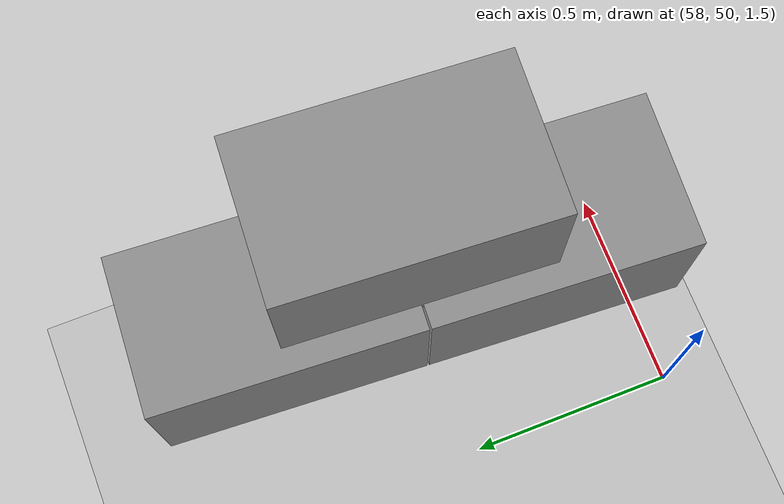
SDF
<sdf version="1.7">
 <world name="default">
  <model name="ground_plane">
   <static>1</static>
   <link name="link">
    <collision name="collision">
     <geometry><plane><normal>0 0 1</normal><size>100 100</size></plane></geometry>
     <surface>
      <contact><collide_bitmask>65535</collide_bitmask></contact>
      <friction><ode><mu>100</mu><mu2>50</mu2></ode></friction>
     </surface>
    </collision>
    <visual name="visual">
     <cast_shadows>0</cast_shadows>
     <geometry><plane><normal>0 0 1</normal><size>100 100</size></plane></geometry>
     <material>
      <script><uri>file://media/materials/scripts/gazebo.material</uri><name>Gazebo/Grey</name></script>
     </material>
    </visual>
   </link>
  </model>
  <model name="Add_Box_clone_clone_3_clone_11">
   <link name="link">
    <inertial>
     <mass>1</mass>
     <inertia>
      <ixx>0.166667</ixx>
      <ixy>0</ixy>
      <ixz>0</ixz>
      <iyy>0.166667</iyy>
      <iyz>0</iyz>
      <izz>0.166667</izz>
     </inertia>
    </inertial>
    <kinematic>1</kinematic>
    <gravity>0</gravity>
    <visual name="visual">
     <geometry><box><size>0.686 0.406 0.381</size></box></geometry>
     <material>
      <script><name>Gazebo/Grey</name><uri>file://media/materials/scripts/gazebo.material</uri></script>
      <shader type="pixel"><normal_map>__default__</normal_map></shader>
      <ambient>0.3 0.3 0.3 1</ambient>
      <diffuse>0.7 0.7 0.7 1</diffuse>
      <specular>0.01 0.01 0.01 1</specular>
      <emissive>0 0 0 1</emissive>
     </material>
    </visual>
    <collision name="collision">
     <geometry><box><size>1 1 1</size></box></geometry>
     <surface>
      <friction>
       <ode><mu>1</mu><mu2>1</mu2><fdir1>0 0 0</fdir1><slip1>0</slip1><slip2>0</slip2></ode>
       <torsional>
        <coefficient>1</coefficient>
        <patch_radius>0</patch_radius>
        <surface_radius>0</surface_radius>
        <use_patch_radius>1</use_patch_radius>
        <ode><slip>0</slip></ode>
       </torsional>
      </friction>
      <bounce><restitution_coefficient>0</restitution_coefficient><threshold>1e+06</threshold></bounce>
      <contact>
       <collide_without_contact>0</collide_without_contact>
       <collide_without_contact_bitmask>1</collide_without_contact_bitmask>
       <collide_bitmask>1</collide_bitmask>
       <ode>
        <soft_cfm>0</soft_cfm>
        <soft_erp>0.2</soft_erp>
        <kp>1e+13</kp>
        <kd>1</kd>
        <max_vel>0.01</max_vel>
        <min_depth>0</min_depth>
       </ode>
       <bullet>
        <split_impulse>1</split_impulse>
        <split_impulse_penetration_threshold>-0.01</split_impulse_penetration_threshold>
        <soft_cfm>0</soft_cfm>
        <soft_erp>0.2</soft_erp>
        <kp>1e+13</kp>
        <kd>1</kd>
       </bullet>
      </contact>
     </surface>
    </collision>
   </link>
   <link name="link_clone">
    <inertial>
     <mass>1</mass>
     <inertia>
      <ixx>0.166667</ixx>
      <ixy>0</ixy>
      <ixz>0</ixz>
      <iyy>0.166667</iyy>
      <iyz>0</iyz>
      <izz>0.166667</izz>
     </inertia>
    </inertial>
    <pose>-0.343354 -0.063316 0.354303 1e-05 -0 0</pose>
    <gravity>0</gravity>
    <visual name="visual">
     <geometry><box><size>0.686 0.406 0.381</size></box></geometry>
     <material>
      <script><name>Gazebo/Grey</name><uri>file://media/materials/scripts/gazebo.material</uri></script>
      <shader type="pixel"><normal_map>__default__</normal_map></shader>
      <ambient>0.3 0.3 0.3 1</ambient>
      <diffuse>0.7 0.7 0.7 1</diffuse>
      <specular>0.01 0.01 0.01 1</specular>
      <emissive>0 0 0 1</emissive>
     </material>
    </visual>
    <collision name="collision">
     <geometry><box><size>1 1 1</size></box></geometry>
     <surface>
      <friction>
       <ode><mu>1</mu><mu2>1</mu2><fdir1>0 0 0</fdir1><slip1>0</slip1><slip2>0</slip2></ode>
       <torsional>
        <coefficient>1</coefficient>
        <patch_radius>0</patch_radius>
        <surface_radius>0</surface_radius>
        <use_patch_radius>1</use_patch_radius>
        <ode><slip>0</slip></ode>
       </torsional>
      </friction>
      <bounce><restitution_coefficient>0</restitution_coefficient><threshold>1e+06</threshold></bounce>
      <contact>
       <collide_without_contact>0</collide_without_contact>
       <collide_without_contact_bitmask>1</collide_without_contact_bitmask>
       <collide_bitmask>1</collide_bitmask>
       <ode>
        <soft_cfm>0</soft_cfm>
        <soft_erp>0.2</soft_erp>
        <kp>1e+13</kp>
        <kd>1</kd>
        <max_vel>0.01</max_vel>
        <min_depth>0</min_depth>
       </ode>
       <bullet>
        <split_impulse>1</split_impulse>
        <split_impulse_penetration_threshold>-0.01</split_impulse_penetration_threshold>
        <soft_cfm>0</soft_cfm>
        <soft_erp>0.2</soft_erp>
        <kp>1e+13</kp>
        <kd>1</kd>
       </bullet>
      </contact>
     </surface>
    </collision>
   </link>
   <link name="link_clone_clone">
    <inertial>
     <mass>1</mass>
     <inertia>
      <ixx>0.166667</ixx>
      <ixy>0</ixy>
      <ixz>0</ixz>
      <iyy>0.166667</iyy>
      <iyz>0</iyz>
      <izz>0.166667</izz>
     </inertia>
    </inertial>
    <pose>-0.690786 -0.000183 -1e-05 2e-05 -0 0</pose>
    <gravity>0</gravity>
    <visual name="visual">
     <geometry><box><size>0.686 0.406 0.381</size></box></geometry>
     <material>
      <script><name>Gazebo/Grey</name><uri>file://media/materials/scripts/gazebo.material</uri></script>
      <shader type="pixel"><normal_map>__default__</normal_map></shader>
      <ambient>0.3 0.3 0.3 1</ambient>
      <diffuse>0.7 0.7 0.7 1</diffuse>
      <specular>0.01 0.01 0.01 1</specular>
      <emissive>0 0 0 1</emissive>
     </material>
    </visual>
    <collision name="collision">
     <geometry><box><size>1 1 1</size></box></geometry>
     <surface>
      <friction>
       <ode><mu>1</mu><mu2>1</mu2><fdir1>0 0 0</fdir1><slip1>0</slip1><slip2>0</slip2></ode>
       <torsional>
        <coefficient>1</coefficient>
        <patch_radius>0</patch_radius>
        <surface_radius>0</surface_radius>
        <use_patch_radius>1</use_patch_radius>
        <ode><slip>0</slip></ode>
       </torsional>
      </friction>
      <bounce><restitution_coefficient>0</restitution_coefficient><threshold>1e+06</threshold></bounce>
      <contact>
       <collide_without_contact>0</collide_without_contact>
       <collide_without_contact_bitmask>1</collide_without_contact_bitmask>
       <collide_bitmask>1</collide_bitmask>
       <ode>
        <soft_cfm>0</soft_cfm>
        <soft_erp>0.2</soft_erp>
        <kp>1e+13</kp>
        <kd>1</kd>
        <max_vel>0.01</max_vel>
        <min_depth>0</min_depth>
       </ode>
       <bullet>
        <split_impulse>1</split_impulse>
        <split_impulse_penetration_threshold>-0.01</split_impulse_penetration_threshold>
        <soft_cfm>0</soft_cfm>
        <soft_erp>0.2</soft_erp>
        <kp>1e+13</kp>
        <kd>1</kd>
       </bullet>
      </contact>
     </surface>
    </collision>
   </link>
   <static>0</static>
   <pose>58.4839 50.8657 1.61518 0 -0 1.51074</pose>
  </model>
 </world>
</sdf>
